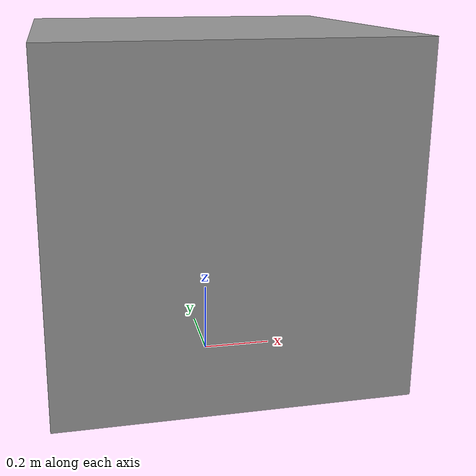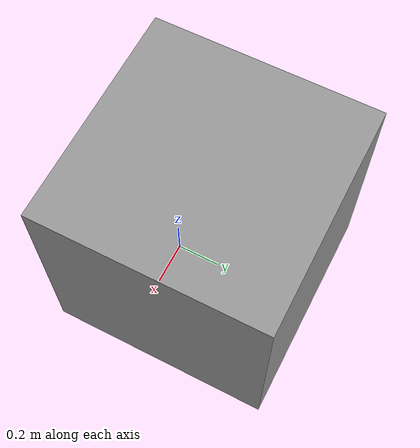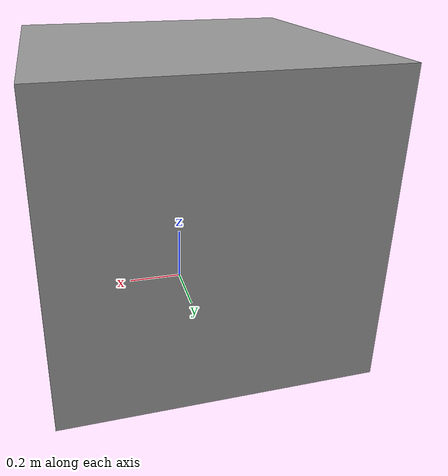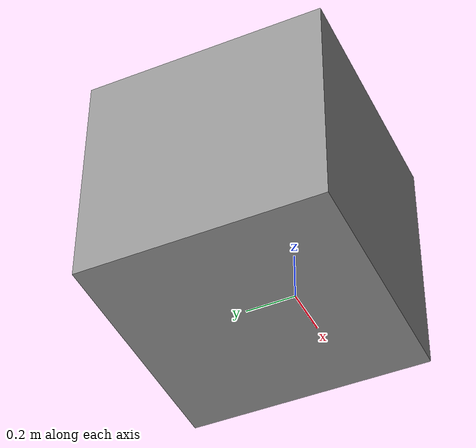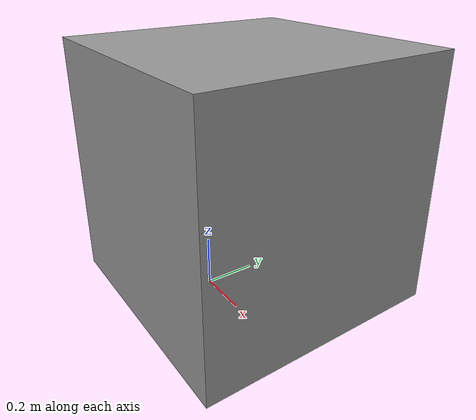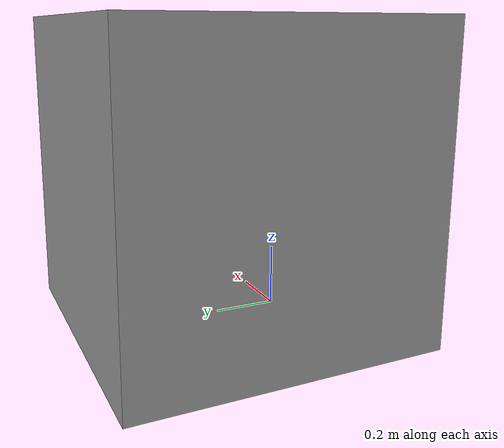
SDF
<?xml version='1.0'?>
<sdf version='1.6'>
  <model name='unit_box_clone'>
    <link name='link'>
      <inertial>
        <mass>1</mass>
        <inertia>
          <ixx>0.166667</ixx>
          <ixy>0</ixy>
          <ixz>0</ixz>
          <iyy>0.166667</iyy>
          <iyz>0</iyz>
          <izz>0.166667</izz>
        </inertia>
        <pose frame=''>0 0 0 0 -0 0</pose>
      </inertial>
      <self_collide>0</self_collide>
      <enable_wind>0</enable_wind>
      <kinematic>0</kinematic>
      <pose frame=''>0 0 0 0 -0 0</pose>
      <visual name='visual'>
        <geometry>
          <box>
            <size>0.058696 0.061595 0.061753</size>
          </box>
        </geometry>
        <material>
          <ambient>1 0 0 1</ambient>
          <diffuse>1 0 0 1</diffuse>
          <script>
            <name>Gazebo/Grey</name>
            <uri>file://media/materials/scripts/gazebo.material</uri>
          </script>
          <shader type='pixel'/>
        </material>
        <pose frame=''>0 0 0 0 -0 0</pose>
        <transparency>0</transparency>
        <cast_shadows>1</cast_shadows>
      </visual>
      <collision name='collision'>
        <laser_retro>0</laser_retro>
        <max_contacts>10</max_contacts>
        <pose frame=''>0 0 0 0 -0 0</pose>
        <geometry>
          <box>
            <size>0.058696 0.061595 0.061753</size>
          </box>
        </geometry>
        <surface>
          <friction>
            <ode>
              <mu>1</mu>
              <mu2>1</mu2>
              <fdir1>0 0 0</fdir1>
              <slip1>0</slip1>
              <slip2>0</slip2>
            </ode>
            <torsional>
              <coefficient>1</coefficient>
              <patch_radius>0</patch_radius>
              <surface_radius>0</surface_radius>
              <use_patch_radius>1</use_patch_radius>
              <ode>
                <slip>0</slip>
              </ode>
            </torsional>
          </friction>
          <bounce>
            <restitution_coefficient>0</restitution_coefficient>
            <threshold>1e+06</threshold>
          </bounce>
          <contact>
            <collide_without_contact>0</collide_without_contact>
            <collide_without_contact_bitmask>1</collide_without_contact_bitmask>
            <collide_bitmask>1</collide_bitmask>
            <ode>
              <soft_cfm>0</soft_cfm>
              <soft_erp>0.2</soft_erp>
              <kp>1e+13</kp>
              <kd>1</kd>
              <max_vel>0.01</max_vel>
              <min_depth>0</min_depth>
            </ode>
            <bullet>
              <split_impulse>1</split_impulse>
              <split_impulse_penetration_threshold>-0.01</split_impulse_penetration_threshold>
              <soft_cfm>0</soft_cfm>
              <soft_erp>0.2</soft_erp>
              <kp>1e+13</kp>
              <kd>1</kd>
            </bullet>
          </contact>
        </surface>
      </collision>
    </link>
    <link name='link_1'>
      <inertial>
        <mass>1</mass>
        <inertia>
          <ixx>0.166667</ixx>
          <ixy>0</ixy>
          <ixz>0</ixz>
          <iyy>0.166667</iyy>
          <iyz>0</iyz>
          <izz>0.166667</izz>
        </inertia>
      </inertial>
      <pose frame=''>0.022379 0.168765 0.46912 -1.3e-05 -0.000207 0.011812</pose>
      <visual name='visual'>
        <pose frame=''>0 0 0 0 -0 0</pose>
        <geometry>
          <box>
            <size>1 1 1</size>
          </box>
        </geometry>
        <material>
          <lighting>1</lighting>
          <script>
            <uri>file://media/materials/scripts/gazebo.material</uri>
            <name>Gazebo/Grey</name>
          </script>
          <shader type='pixel'/>
        </material>
        <transparency>0</transparency>
        <cast_shadows>1</cast_shadows>
      </visual>
      <collision name='collision'>
        <laser_retro>0</laser_retro>
        <max_contacts>10</max_contacts>
        <pose frame=''>0 0 0 0 -0 0</pose>
        <geometry>
          <box>
            <size>1 1 1</size>
          </box>
        </geometry>
        <surface>
          <friction>
            <ode>
              <mu>1</mu>
              <mu2>1</mu2>
              <fdir1>0 0 0</fdir1>
              <slip1>0</slip1>
              <slip2>0</slip2>
            </ode>
            <torsional>
              <coefficient>1</coefficient>
              <patch_radius>0</patch_radius>
              <surface_radius>0</surface_radius>
              <use_patch_radius>1</use_patch_radius>
              <ode>
                <slip>0</slip>
              </ode>
            </torsional>
          </friction>
          <bounce>
            <restitution_coefficient>0</restitution_coefficient>
            <threshold>1e+06</threshold>
          </bounce>
          <contact>
            <collide_without_contact>0</collide_without_contact>
            <collide_without_contact_bitmask>1</collide_without_contact_bitmask>
            <collide_bitmask>1</collide_bitmask>
            <ode>
              <soft_cfm>0</soft_cfm>
              <soft_erp>0.2</soft_erp>
              <kp>1e+13</kp>
              <kd>1</kd>
              <max_vel>0.01</max_vel>
              <min_depth>0</min_depth>
            </ode>
            <bullet>
              <split_impulse>1</split_impulse>
              <split_impulse_penetration_threshold>-0.01</split_impulse_penetration_threshold>
              <soft_cfm>0</soft_cfm>
              <soft_erp>0.2</soft_erp>
              <kp>1e+13</kp>
              <kd>1</kd>
            </bullet>
          </contact>
        </surface>
      </collision>
    </link>
    <static>0</static>
    <allow_auto_disable>0</allow_auto_disable>
  </model>
</sdf>
